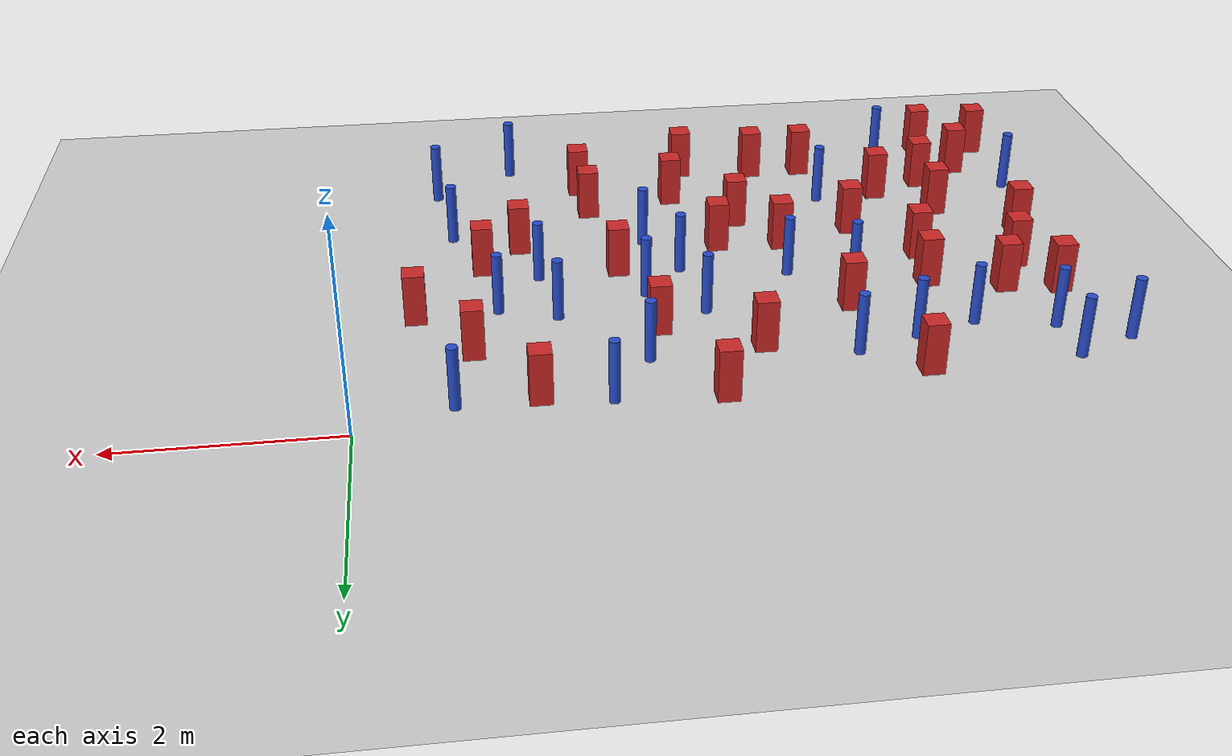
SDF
<sdf version="1.6">
 <world name="default">
  <model name="ground_plane">
   <static>1</static>
   <link name="link">
    <collision name="collision">
     <geometry><plane><normal>0 0 1</normal><size>100 100</size></plane></geometry>
     <surface><friction><ode><mu>100</mu><mu2>50</mu2></ode></friction></surface>
    </collision>
    <visual name="visual">
     <cast_shadows>0</cast_shadows>
     <geometry><plane><normal>0 0 1</normal><size>100 100</size></plane></geometry>
     <material>
      <ambient>1.0 1.0 1.0 1.0</ambient>
      <diffuse>0.8 0.8 0.8 1.0</diffuse>
      <specular>0.01 0.01 0.01 1.000000</specular>
     </material>
    </visual>
   </link>
  </model>
  <model name="square_post_obstacle2">
   <static>true</static>
   <pose>-6.33493677659 -2.16830192342 1.91545236811e-07 -7.35059704564e-06 1.12565212e-07 2.39332434364e-05</pose>
   <link name="link">
    <pose>0 0 0.25 0 -0 0</pose>
    <inertial>
     <mass>100</mass>
     <inertia>
      <ixx>0.166667</ixx>
      <ixy>0</ixy>
      <ixz>0</ixz>
      <iyy>0.166667</iyy>
      <iyz>0</iyz>
      <izz>0.166667</izz>
     </inertia>
    </inertial>
    <collision name="collision"><geometry><box><size>.2 .2 .5</size></box></geometry></collision>
    <visual name="visual">
     <geometry><box><size>.2 .2 .5</size></box></geometry>
     <material>
      <script><name>Gazebo/Red</name><uri>file://media/materials/scripts/gazebo.material</uri></script>
     </material>
    </visual>
   </link>
  </model>
  <model name="square_post_obstacle3">
   <static>true</static>
   <pose>-3.41672989915 -4.59140950743 1.91545236811e-07 -7.35059704564e-06 1.12565212e-07 2.39332434364e-05</pose>
   <link name="link">
    <pose>0 0 0.25 0 -0 0</pose>
    <inertial>
     <mass>100</mass>
     <inertia>
      <ixx>0.166667</ixx>
      <ixy>0</ixy>
      <ixz>0</ixz>
      <iyy>0.166667</iyy>
      <iyz>0</iyz>
      <izz>0.166667</izz>
     </inertia>
    </inertial>
    <collision name="collision"><geometry><box><size>.2 .2 .5</size></box></geometry></collision>
    <visual name="visual">
     <geometry><box><size>.2 .2 .5</size></box></geometry>
     <material>
      <script><name>Gazebo/Red</name><uri>file://media/materials/scripts/gazebo.material</uri></script>
     </material>
    </visual>
   </link>
  </model>
  <model name="pole_obstacle11">
   <static>true</static>
   <pose>-2.5680316428 -0.844122464464 7.38925637345e-09 -8.471706928e-08 1.24976765177e-08 -1.74513093012e-07</pose>
   <link name="link">
    <pose>0 0 0.3 0 -0 0</pose>
    <inertial>
     <mass>1</mass>
     <inertia><ixx>0.145833</ixx><ixy>0</ixy><ixz>0</ixz><iyy>0.145833</iyy><iyz>0</iyz><izz>0.125</izz></inertia>
    </inertial>
    <collision name="collision">
     <geometry><cylinder><radius>0.05</radius><length>.6</length></cylinder></geometry>
    </collision>
    <visual name="visual">
     <geometry><cylinder><radius>0.05</radius><length>.6</length></cylinder></geometry>
     <material>
      <script><name>Gazebo/Blue</name><uri>file://media/materials/scripts/gazebo.material</uri></script>
     </material>
    </visual>
   </link>
  </model>
  <model name="square_post_obstacle22">
   <static>true</static>
   <pose>-2.28275646718 -4.28150279301 1.91545236811e-07 -7.35059704564e-06 1.12565212e-07 2.39332434364e-05</pose>
   <link name="link">
    <pose>0 0 0.25 0 -0 0</pose>
    <inertial>
     <mass>100</mass>
     <inertia>
      <ixx>0.166667</ixx>
      <ixy>0</ixy>
      <ixz>0</ixz>
      <iyy>0.166667</iyy>
      <iyz>0</iyz>
      <izz>0.166667</izz>
     </inertia>
    </inertial>
    <collision name="collision"><geometry><box><size>.2 .2 .5</size></box></geometry></collision>
    <visual name="visual">
     <geometry><box><size>.2 .2 .5</size></box></geometry>
     <material>
      <script><name>Gazebo/Red</name><uri>file://media/materials/scripts/gazebo.material</uri></script>
     </material>
    </visual>
   </link>
  </model>
  <model name="square_post_obstacle23">
   <static>true</static>
   <pose>-4.16827739054 -4.4960188859 1.91545236811e-07 -7.35059704564e-06 1.12565212e-07 2.39332434364e-05</pose>
   <link name="link">
    <pose>0 0 0.25 0 -0 0</pose>
    <inertial>
     <mass>100</mass>
     <inertia>
      <ixx>0.166667</ixx>
      <ixy>0</ixy>
      <ixz>0</ixz>
      <iyy>0.166667</iyy>
      <iyz>0</iyz>
      <izz>0.166667</izz>
     </inertia>
    </inertial>
    <collision name="collision"><geometry><box><size>.2 .2 .5</size></box></geometry></collision>
    <visual name="visual">
     <geometry><box><size>.2 .2 .5</size></box></geometry>
     <material>
      <script><name>Gazebo/Red</name><uri>file://media/materials/scripts/gazebo.material</uri></script>
     </material>
    </visual>
   </link>
  </model>
  <model name="square_post_obstacle26">
   <static>true</static>
   <pose>-3.60433264316 -0.939159223739 1.91545236811e-07 -7.35059704564e-06 1.12565212e-07 2.39332434364e-05</pose>
   <link name="link">
    <pose>0 0 0.25 0 -0 0</pose>
    <inertial>
     <mass>100</mass>
     <inertia>
      <ixx>0.166667</ixx>
      <ixy>0</ixy>
      <ixz>0</ixz>
      <iyy>0.166667</iyy>
      <iyz>0</iyz>
      <izz>0.166667</izz>
     </inertia>
    </inertial>
    <collision name="collision"><geometry><box><size>.2 .2 .5</size></box></geometry></collision>
    <visual name="visual">
     <geometry><box><size>.2 .2 .5</size></box></geometry>
     <material>
      <script><name>Gazebo/Red</name><uri>file://media/materials/scripts/gazebo.material</uri></script>
     </material>
    </visual>
   </link>
  </model>
  <model name="pole_obstacle19">
   <static>true</static>
   <pose>-1.30229299585 -1.8413580244 7.38925637345e-09 -8.471706928e-08 1.24976765079e-08 -1.74513093017e-07</pose>
   <link name="link">
    <pose>0 0 0.3 0 -0 0</pose>
    <inertial>
     <mass>1</mass>
     <inertia><ixx>0.145833</ixx><ixy>0</ixy><ixz>0</ixz><iyy>0.145833</iyy><iyz>0</iyz><izz>0.125</izz></inertia>
    </inertial>
    <collision name="collision">
     <geometry><cylinder><radius>0.05</radius><length>.6</length></cylinder></geometry>
    </collision>
    <visual name="visual">
     <geometry><cylinder><radius>0.05</radius><length>.6</length></cylinder></geometry>
     <material>
      <script><name>Gazebo/Blue</name><uri>file://media/materials/scripts/gazebo.material</uri></script>
     </material>
    </visual>
   </link>
  </model>
  <model name="square_post_obstacle29">
   <static>true</static>
   <pose>-2.72443568451 -1.34159481364 1.91545236811e-07 -7.35059704564e-06 1.12565212e-07 2.39332434364e-05</pose>
   <link name="link">
    <pose>0 0 0.25 0 -0 0</pose>
    <inertial>
     <mass>100</mass>
     <inertia>
      <ixx>0.166667</ixx>
      <ixy>0</ixy>
      <ixz>0</ixz>
      <iyy>0.166667</iyy>
      <iyz>0</iyz>
      <izz>0.166667</izz>
     </inertia>
    </inertial>
    <collision name="collision"><geometry><box><size>.2 .2 .5</size></box></geometry></collision>
    <visual name="visual">
     <geometry><box><size>.2 .2 .5</size></box></geometry>
     <material>
      <script><name>Gazebo/Red</name><uri>file://media/materials/scripts/gazebo.material</uri></script>
     </material>
    </visual>
   </link>
  </model>
  <model name="square_post_obstacle30">
   <static>true</static>
   <pose>-6.37295162509 -4.31321181625 1.91545236811e-07 -7.35059704564e-06 1.12565212e-07 2.39332434364e-05</pose>
   <link name="link">
    <pose>0 0 0.25 0 -0 0</pose>
    <inertial>
     <mass>100</mass>
     <inertia>
      <ixx>0.166667</ixx>
      <ixy>0</ixy>
      <ixz>0</ixz>
      <iyy>0.166667</iyy>
      <iyz>0</iyz>
      <izz>0.166667</izz>
     </inertia>
    </inertial>
    <collision name="collision"><geometry><box><size>.2 .2 .5</size></box></geometry></collision>
    <visual name="visual">
     <geometry><box><size>.2 .2 .5</size></box></geometry>
     <material>
      <script><name>Gazebo/Red</name><uri>file://media/materials/scripts/gazebo.material</uri></script>
     </material>
    </visual>
   </link>
  </model>
  <model name="pole_obstacle21">
   <static>true</static>
   <pose>-5.61730795118 -4.70919754139 7.38925637345e-09 -8.47170692796e-08 1.24976764786e-08 -1.74513093032e-07</pose>
   <link name="link">
    <pose>0 0 0.3 0 -0 0</pose>
    <inertial>
     <mass>1</mass>
     <inertia><ixx>0.145833</ixx><ixy>0</ixy><ixz>0</ixz><iyy>0.145833</iyy><iyz>0</iyz><izz>0.125</izz></inertia>
    </inertial>
    <collision name="collision">
     <geometry><cylinder><radius>0.05</radius><length>.6</length></cylinder></geometry>
    </collision>
    <visual name="visual">
     <geometry><cylinder><radius>0.05</radius><length>.6</length></cylinder></geometry>
     <material>
      <script><name>Gazebo/Blue</name><uri>file://media/materials/scripts/gazebo.material</uri></script>
     </material>
    </visual>
   </link>
  </model>
  <model name="pole_obstacle22">
   <static>true</static>
   <pose>-5.58715791349 -1.10911913729 7.38925637345e-09 -8.471706928e-08 1.24976765134e-08 -1.74513093015e-07</pose>
   <link name="link">
    <pose>0 0 0.3 0 -0 0</pose>
    <inertial>
     <mass>1</mass>
     <inertia><ixx>0.145833</ixx><ixy>0</ixy><ixz>0</ixz><iyy>0.145833</iyy><iyz>0</iyz><izz>0.125</izz></inertia>
    </inertial>
    <collision name="collision">
     <geometry><cylinder><radius>0.05</radius><length>.6</length></cylinder></geometry>
    </collision>
    <visual name="visual">
     <geometry><cylinder><radius>0.05</radius><length>.6</length></cylinder></geometry>
     <material>
      <script><name>Gazebo/Blue</name><uri>file://media/materials/scripts/gazebo.material</uri></script>
     </material>
    </visual>
   </link>
  </model>
  <model name="pole_obstacle25">
   <static>true</static>
   <pose>-1.83728179556 -1.66361436295 7.38925637345e-09 -8.471706928e-08 1.24976765079e-08 -1.74513093017e-07</pose>
   <link name="link">
    <pose>0 0 0.3 0 -0 0</pose>
    <inertial>
     <mass>1</mass>
     <inertia><ixx>0.145833</ixx><ixy>0</ixy><ixz>0</ixz><iyy>0.145833</iyy><iyz>0</iyz><izz>0.125</izz></inertia>
    </inertial>
    <collision name="collision">
     <geometry><cylinder><radius>0.05</radius><length>.6</length></cylinder></geometry>
    </collision>
    <visual name="visual">
     <geometry><cylinder><radius>0.05</radius><length>.6</length></cylinder></geometry>
     <material>
      <script><name>Gazebo/Blue</name><uri>file://media/materials/scripts/gazebo.material</uri></script>
     </material>
    </visual>
   </link>
  </model>
  <model name="pole_obstacle27">
   <static>true</static>
   <pose>-0.937002884871 -3.31681657476 7.38925637345e-09 -8.47170692799e-08 1.2497676509e-08 -1.74513093016e-07</pose>
   <link name="link">
    <pose>0 0 0.3 0 -0 0</pose>
    <inertial>
     <mass>1</mass>
     <inertia><ixx>0.145833</ixx><ixy>0</ixy><ixz>0</ixz><iyy>0.145833</iyy><iyz>0</iyz><izz>0.125</izz></inertia>
    </inertial>
    <collision name="collision">
     <geometry><cylinder><radius>0.05</radius><length>.6</length></cylinder></geometry>
    </collision>
    <visual name="visual">
     <geometry><cylinder><radius>0.05</radius><length>.6</length></cylinder></geometry>
     <material>
      <script><name>Gazebo/Blue</name><uri>file://media/materials/scripts/gazebo.material</uri></script>
     </material>
    </visual>
   </link>
  </model>
  <model name="pole_obstacle29">
   <static>true</static>
   <pose>-4.70807690851 -2.06385257895 7.38925637345e-09 -8.47170692798e-08 1.24976764937e-08 -1.74513093023e-07</pose>
   <link name="link">
    <pose>0 0 0.3 0 -0 0</pose>
    <inertial>
     <mass>1</mass>
     <inertia><ixx>0.145833</ixx><ixy>0</ixy><ixz>0</ixz><iyy>0.145833</iyy><iyz>0</iyz><izz>0.125</izz></inertia>
    </inertial>
    <collision name="collision">
     <geometry><cylinder><radius>0.05</radius><length>.6</length></cylinder></geometry>
    </collision>
    <visual name="visual">
     <geometry><cylinder><radius>0.05</radius><length>.6</length></cylinder></geometry>
     <material>
      <script><name>Gazebo/Blue</name><uri>file://media/materials/scripts/gazebo.material</uri></script>
     </material>
    </visual>
   </link>
  </model>
  <model name="square_post_obstacle44">
   <static>true</static>
   <pose>-6.73897531042 -4.80715142833 1.91545236811e-07 -7.35059704564e-06 1.12565212e-07 2.39332434364e-05</pose>
   <link name="link">
    <pose>0 0 0.25 0 -0 0</pose>
    <inertial>
     <mass>100</mass>
     <inertia>
      <ixx>0.166667</ixx>
      <ixy>0</ixy>
      <ixz>0</ixz>
      <iyy>0.166667</iyy>
      <iyz>0</iyz>
      <izz>0.166667</izz>
     </inertia>
    </inertial>
    <collision name="collision"><geometry><box><size>.2 .2 .5</size></box></geometry></collision>
    <visual name="visual">
     <geometry><box><size>.2 .2 .5</size></box></geometry>
     <material>
      <script><name>Gazebo/Red</name><uri>file://media/materials/scripts/gazebo.material</uri></script>
     </material>
    </visual>
   </link>
  </model>
  <model name="square_post_obstacle51">
   <static>true</static>
   <pose>-5.36779938543 -3.8107366212 1.91545236811e-07 -7.35059704564e-06 1.12565212e-07 2.39332434364e-05</pose>
   <link name="link">
    <pose>0 0 0.25 0 -0 0</pose>
    <inertial>
     <mass>100</mass>
     <inertia>
      <ixx>0.166667</ixx>
      <ixy>0</ixy>
      <ixz>0</ixz>
      <iyy>0.166667</iyy>
      <iyz>0</iyz>
      <izz>0.166667</izz>
     </inertia>
    </inertial>
    <collision name="collision"><geometry><box><size>.2 .2 .5</size></box></geometry></collision>
    <visual name="visual">
     <geometry><box><size>.2 .2 .5</size></box></geometry>
     <material>
      <script><name>Gazebo/Red</name><uri>file://media/materials/scripts/gazebo.material</uri></script>
     </material>
    </visual>
   </link>
  </model>
  <model name="pole_obstacle52">
   <static>true</static>
   <pose>-0.810397324868 -4.27810373208 7.38925637345e-09 -8.471706928e-08 1.24976765086e-08 -1.74513093015e-07</pose>
   <link name="link">
    <pose>0 0 0.3 0 -0 0</pose>
    <inertial>
     <mass>1</mass>
     <inertia><ixx>0.145833</ixx><ixy>0</ixy><ixz>0</ixz><iyy>0.145833</iyy><iyz>0</iyz><izz>0.125</izz></inertia>
    </inertial>
    <collision name="collision">
     <geometry><cylinder><radius>0.05</radius><length>.6</length></cylinder></geometry>
    </collision>
    <visual name="visual">
     <geometry><cylinder><radius>0.05</radius><length>.6</length></cylinder></geometry>
     <material>
      <script><name>Gazebo/Blue</name><uri>file://media/materials/scripts/gazebo.material</uri></script>
     </material>
    </visual>
   </link>
  </model>
  <model name="square_post_obstacle62">
   <static>true</static>
   <pose>-5.89875459513 -4.02642376744 1.91545236811e-07 -7.35059704564e-06 1.12565212e-07 2.39332434364e-05</pose>
   <link name="link">
    <pose>0 0 0.25 0 -0 0</pose>
    <inertial>
     <mass>100</mass>
     <inertia>
      <ixx>0.166667</ixx>
      <ixy>0</ixy>
      <ixz>0</ixz>
      <iyy>0.166667</iyy>
      <iyz>0</iyz>
      <izz>0.166667</izz>
     </inertia>
    </inertial>
    <collision name="collision"><geometry><box><size>.2 .2 .5</size></box></geometry></collision>
    <visual name="visual">
     <geometry><box><size>.2 .2 .5</size></box></geometry>
     <material>
      <script><name>Gazebo/Red</name><uri>file://media/materials/scripts/gazebo.material</uri></script>
     </material>
    </visual>
   </link>
  </model>
  <model name="square_post_obstacle69">
   <static>true</static>
   <pose>-4.90290778773 -3.0620329613 1.91545236811e-07 -7.35059704564e-06 1.12565212e-07 2.39332434364e-05</pose>
   <link name="link">
    <pose>0 0 0.25 0 -0 0</pose>
    <inertial>
     <mass>100</mass>
     <inertia>
      <ixx>0.166667</ixx>
      <ixy>0</ixy>
      <ixz>0</ixz>
      <iyy>0.166667</iyy>
      <iyz>0</iyz>
      <izz>0.166667</izz>
     </inertia>
    </inertial>
    <collision name="collision"><geometry><box><size>.2 .2 .5</size></box></geometry></collision>
    <visual name="visual">
     <geometry><box><size>.2 .2 .5</size></box></geometry>
     <material>
      <script><name>Gazebo/Red</name><uri>file://media/materials/scripts/gazebo.material</uri></script>
     </material>
    </visual>
   </link>
  </model>
  <model name="pole_obstacle67">
   <static>true</static>
   <pose>-3.08066860473 -2.42697409345 7.38925637345e-09 -8.47170692798e-08 1.24976764939e-08 -1.74513093025e-07</pose>
   <link name="link">
    <pose>0 0 0.3 0 -0 0</pose>
    <inertial>
     <mass>1</mass>
     <inertia><ixx>0.145833</ixx><ixy>0</ixy><ixz>0</ixz><iyy>0.145833</iyy><iyz>0</iyz><izz>0.125</izz></inertia>
    </inertial>
    <collision name="collision">
     <geometry><cylinder><radius>0.05</radius><length>.6</length></cylinder></geometry>
    </collision>
    <visual name="visual">
     <geometry><cylinder><radius>0.05</radius><length>.6</length></cylinder></geometry>
     <material>
      <script><name>Gazebo/Blue</name><uri>file://media/materials/scripts/gazebo.material</uri></script>
     </material>
    </visual>
   </link>
  </model>
  <model name="square_post_obstacle72">
   <static>true</static>
   <pose>-6.5771044003 -1.628582767 1.91545236811e-07 -7.35059704564e-06 1.12565212e-07 2.39332434364e-05</pose>
   <link name="link">
    <pose>0 0 0.25 0 -0 0</pose>
    <inertial>
     <mass>100</mass>
     <inertia>
      <ixx>0.166667</ixx>
      <ixy>0</ixy>
      <ixz>0</ixz>
      <iyy>0.166667</iyy>
      <iyz>0</iyz>
      <izz>0.166667</izz>
     </inertia>
    </inertial>
    <collision name="collision"><geometry><box><size>.2 .2 .5</size></box></geometry></collision>
    <visual name="visual">
     <geometry><box><size>.2 .2 .5</size></box></geometry>
     <material>
      <script><name>Gazebo/Red</name><uri>file://media/materials/scripts/gazebo.material</uri></script>
     </material>
    </visual>
   </link>
  </model>
  <model name="pole_obstacle77">
   <static>true</static>
   <pose>-1.59422433769 -4.78620893817 7.38925637345e-09 -8.47170692799e-08 1.24976765033e-08 -1.74513093018e-07</pose>
   <link name="link">
    <pose>0 0 0.3 0 -0 0</pose>
    <inertial>
     <mass>1</mass>
     <inertia><ixx>0.145833</ixx><ixy>0</ixy><ixz>0</ixz><iyy>0.145833</iyy><iyz>0</iyz><izz>0.125</izz></inertia>
    </inertial>
    <collision name="collision">
     <geometry><cylinder><radius>0.05</radius><length>.6</length></cylinder></geometry>
    </collision>
    <visual name="visual">
     <geometry><cylinder><radius>0.05</radius><length>.6</length></cylinder></geometry>
     <material>
      <script><name>Gazebo/Blue</name><uri>file://media/materials/scripts/gazebo.material</uri></script>
     </material>
    </visual>
   </link>
  </model>
  <model name="pole_obstacle79">
   <static>true</static>
   <pose>-6.79373213247 -3.83398266983 7.38925637345e-09 -8.47170692798e-08 1.24976764937e-08 -1.74513093023e-07</pose>
   <link name="link">
    <pose>0 0 0.3 0 -0 0</pose>
    <inertial>
     <mass>1</mass>
     <inertia><ixx>0.145833</ixx><ixy>0</ixy><ixz>0</ixz><iyy>0.145833</iyy><iyz>0</iyz><izz>0.125</izz></inertia>
    </inertial>
    <collision name="collision">
     <geometry><cylinder><radius>0.05</radius><length>.6</length></cylinder></geometry>
    </collision>
    <visual name="visual">
     <geometry><cylinder><radius>0.05</radius><length>.6</length></cylinder></geometry>
     <material>
      <script><name>Gazebo/Blue</name><uri>file://media/materials/scripts/gazebo.material</uri></script>
     </material>
    </visual>
   </link>
  </model>
  <model name="pole_obstacle89">
   <static>true</static>
   <pose>-6.3417037939 -0.432548549356 7.38925637345e-09 -8.47170692798e-08 1.24976765003e-08 -1.7451309302e-07</pose>
   <link name="link">
    <pose>0 0 0.3 0 -0 0</pose>
    <inertial>
     <mass>1</mass>
     <inertia><ixx>0.145833</ixx><ixy>0</ixy><ixz>0</ixz><iyy>0.145833</iyy><iyz>0</iyz><izz>0.125</izz></inertia>
    </inertial>
    <collision name="collision">
     <geometry><cylinder><radius>0.05</radius><length>.6</length></cylinder></geometry>
    </collision>
    <visual name="visual">
     <geometry><cylinder><radius>0.05</radius><length>.6</length></cylinder></geometry>
     <material>
      <script><name>Gazebo/Blue</name><uri>file://media/materials/scripts/gazebo.material</uri></script>
     </material>
    </visual>
   </link>
  </model>
  <model name="square_post_obstacle86">
   <static>true</static>
   <pose>-3.78844333719 -3.3619035592 1.91545236811e-07 -7.35059704564e-06 1.12565212e-07 2.39332434364e-05</pose>
   <link name="link">
    <pose>0 0 0.25 0 -0 0</pose>
    <inertial>
     <mass>100</mass>
     <inertia>
      <ixx>0.166667</ixx>
      <ixy>0</ixy>
      <ixz>0</ixz>
      <iyy>0.166667</iyy>
      <iyz>0</iyz>
      <izz>0.166667</izz>
     </inertia>
    </inertial>
    <collision name="collision"><geometry><box><size>.2 .2 .5</size></box></geometry></collision>
    <visual name="visual">
     <geometry><box><size>.2 .2 .5</size></box></geometry>
     <material>
      <script><name>Gazebo/Red</name><uri>file://media/materials/scripts/gazebo.material</uri></script>
     </material>
    </visual>
   </link>
  </model>
  <model name="pole_obstacle97">
   <static>true</static>
   <pose>-6.90235554496 -0.680822175995 7.38925637345e-09 -8.47170692799e-08 1.24976765038e-08 -1.74513093018e-07</pose>
   <link name="link">
    <pose>0 0 0.3 0 -0 0</pose>
    <inertial>
     <mass>1</mass>
     <inertia><ixx>0.145833</ixx><ixy>0</ixy><ixz>0</ixz><iyy>0.145833</iyy><iyz>0</iyz><izz>0.125</izz></inertia>
    </inertial>
    <collision name="collision">
     <geometry><cylinder><radius>0.05</radius><length>.6</length></cylinder></geometry>
    </collision>
    <visual name="visual">
     <geometry><cylinder><radius>0.05</radius><length>.6</length></cylinder></geometry>
     <material>
      <script><name>Gazebo/Blue</name><uri>file://media/materials/scripts/gazebo.material</uri></script>
     </material>
    </visual>
   </link>
  </model>
  <model name="square_post_obstacle92">
   <static>true</static>
   <pose>-1.19988915969 -2.6409424495 1.91545236811e-07 -7.35059704564e-06 1.12565212e-07 2.39332434364e-05</pose>
   <link name="link">
    <pose>0 0 0.25 0 -0 0</pose>
    <inertial>
     <mass>100</mass>
     <inertia>
      <ixx>0.166667</ixx>
      <ixy>0</ixy>
      <ixz>0</ixz>
      <iyy>0.166667</iyy>
      <iyz>0</iyz>
      <izz>0.166667</izz>
     </inertia>
    </inertial>
    <collision name="collision"><geometry><box><size>.2 .2 .5</size></box></geometry></collision>
    <visual name="visual">
     <geometry><box><size>.2 .2 .5</size></box></geometry>
     <material>
      <script><name>Gazebo/Red</name><uri>file://media/materials/scripts/gazebo.material</uri></script>
     </material>
    </visual>
   </link>
  </model>
  <model name="pole_obstacle109">
   <static>true</static>
   <pose>-4.74854139165 -3.76409709432 7.38925637345e-09 -8.47170692798e-08 1.24976764937e-08 -1.74513093023e-07</pose>
   <link name="link">
    <pose>0 0 0.3 0 -0 0</pose>
    <inertial>
     <mass>1</mass>
     <inertia><ixx>0.145833</ixx><ixy>0</ixy><ixz>0</ixz><iyy>0.145833</iyy><iyz>0</iyz><izz>0.125</izz></inertia>
    </inertial>
    <collision name="collision">
     <geometry><cylinder><radius>0.05</radius><length>.6</length></cylinder></geometry>
    </collision>
    <visual name="visual">
     <geometry><cylinder><radius>0.05</radius><length>.6</length></cylinder></geometry>
     <material>
      <script><name>Gazebo/Blue</name><uri>file://media/materials/scripts/gazebo.material</uri></script>
     </material>
    </visual>
   </link>
  </model>
  <model name="square_post_obstacle98">
   <static>true</static>
   <pose>-4.14745020982 -2.818938567 1.91545236811e-07 -7.35059704564e-06 1.12565212e-07 2.39332434364e-05</pose>
   <link name="link">
    <pose>0 0 0.25 0 -0 0</pose>
    <inertial>
     <mass>100</mass>
     <inertia>
      <ixx>0.166667</ixx>
      <ixy>0</ixy>
      <ixz>0</ixz>
      <iyy>0.166667</iyy>
      <iyz>0</iyz>
      <izz>0.166667</izz>
     </inertia>
    </inertial>
    <collision name="collision"><geometry><box><size>.2 .2 .5</size></box></geometry></collision>
    <visual name="visual">
     <geometry><box><size>.2 .2 .5</size></box></geometry>
     <material>
      <script><name>Gazebo/Red</name><uri>file://media/materials/scripts/gazebo.material</uri></script>
     </material>
    </visual>
   </link>
  </model>
  <model name="pole_obstacle117">
   <static>true</static>
   <pose>-2.69078042785 -1.99279269052 7.38925637345e-09 -8.471706928e-08 1.249767651e-08 -1.74513093015e-07</pose>
   <link name="link">
    <pose>0 0 0.3 0 -0 0</pose>
    <inertial>
     <mass>1</mass>
     <inertia><ixx>0.145833</ixx><ixy>0</ixy><ixz>0</ixz><iyy>0.145833</iyy><iyz>0</iyz><izz>0.125</izz></inertia>
    </inertial>
    <collision name="collision">
     <geometry><cylinder><radius>0.05</radius><length>.6</length></cylinder></geometry>
    </collision>
    <visual name="visual">
     <geometry><cylinder><radius>0.05</radius><length>.6</length></cylinder></geometry>
     <material>
      <script><name>Gazebo/Blue</name><uri>file://media/materials/scripts/gazebo.material</uri></script>
     </material>
    </visual>
   </link>
  </model>
  <model name="square_post_obstacle106">
   <static>true</static>
   <pose>-1.57714338747 -3.03942916583 1.91545236811e-07 -7.35059704564e-06 1.12565212e-07 2.39332434364e-05</pose>
   <link name="link">
    <pose>0 0 0.25 0 -0 0</pose>
    <inertial>
     <mass>100</mass>
     <inertia>
      <ixx>0.166667</ixx>
      <ixy>0</ixy>
      <ixz>0</ixz>
      <iyy>0.166667</iyy>
      <iyz>0</iyz>
      <izz>0.166667</izz>
     </inertia>
    </inertial>
    <collision name="collision"><geometry><box><size>.2 .2 .5</size></box></geometry></collision>
    <visual name="visual">
     <geometry><box><size>.2 .2 .5</size></box></geometry>
     <material>
      <script><name>Gazebo/Red</name><uri>file://media/materials/scripts/gazebo.material</uri></script>
     </material>
    </visual>
   </link>
  </model>
  <model name="pole_obstacle125">
   <static>true</static>
   <pose>-0.851745104304 -0.302418208648 7.38925637345e-09 -8.471706928e-08 1.24976765108e-08 -1.74513093015e-07</pose>
   <link name="link">
    <pose>0 0 0.3 0 -0 0</pose>
    <inertial>
     <mass>1</mass>
     <inertia><ixx>0.145833</ixx><ixy>0</ixy><ixz>0</ixz><iyy>0.145833</iyy><iyz>0</iyz><izz>0.125</izz></inertia>
    </inertial>
    <collision name="collision">
     <geometry><cylinder><radius>0.05</radius><length>.6</length></cylinder></geometry>
    </collision>
    <visual name="visual">
     <geometry><cylinder><radius>0.05</radius><length>.6</length></cylinder></geometry>
     <material>
      <script><name>Gazebo/Blue</name><uri>file://media/materials/scripts/gazebo.material</uri></script>
     </material>
    </visual>
   </link>
  </model>
  <model name="pole_obstacle128">
   <static>true</static>
   <pose>-4.09712016239 -2.23001538375 7.38925637345e-09 -8.47170692798e-08 1.24976764937e-08 -1.74513093023e-07</pose>
   <link name="link">
    <pose>0 0 0.3 0 -0 0</pose>
    <inertial>
     <mass>1</mass>
     <inertia><ixx>0.145833</ixx><ixy>0</ixy><ixz>0</ixz><iyy>0.145833</iyy><iyz>0</iyz><izz>0.125</izz></inertia>
    </inertial>
    <collision name="collision">
     <geometry><cylinder><radius>0.05</radius><length>.6</length></cylinder></geometry>
    </collision>
    <visual name="visual">
     <geometry><cylinder><radius>0.05</radius><length>.6</length></cylinder></geometry>
     <material>
      <script><name>Gazebo/Blue</name><uri>file://media/materials/scripts/gazebo.material</uri></script>
     </material>
    </visual>
   </link>
  </model>
  <model name="square_post_obstacle117">
   <static>true</static>
   <pose>-1.56939161689 -0.344784112629 1.91545236811e-07 -7.35059704564e-06 1.12565212e-07 2.39332434364e-05</pose>
   <link name="link">
    <pose>0 0 0.25 0 -0 0</pose>
    <inertial>
     <mass>100</mass>
     <inertia>
      <ixx>0.166667</ixx>
      <ixy>0</ixy>
      <ixz>0</ixz>
      <iyy>0.166667</iyy>
      <iyz>0</iyz>
      <izz>0.166667</izz>
     </inertia>
    </inertial>
    <collision name="collision"><geometry><box><size>.2 .2 .5</size></box></geometry></collision>
    <visual name="visual">
     <geometry><box><size>.2 .2 .5</size></box></geometry>
     <material>
      <script><name>Gazebo/Red</name><uri>file://media/materials/scripts/gazebo.material</uri></script>
     </material>
    </visual>
   </link>
  </model>
  <model name="square_post_obstacle118">
   <static>true</static>
   <pose>-2.33280439041 -3.74051379975 1.91545236811e-07 -7.35059704564e-06 1.12565212e-07 2.39332434364e-05</pose>
   <link name="link">
    <pose>0 0 0.25 0 -0 0</pose>
    <inertial>
     <mass>100</mass>
     <inertia>
      <ixx>0.166667</ixx>
      <ixy>0</ixy>
      <ixz>0</ixz>
      <iyy>0.166667</iyy>
      <iyz>0</iyz>
      <izz>0.166667</izz>
     </inertia>
    </inertial>
    <collision name="collision"><geometry><box><size>.2 .2 .5</size></box></geometry></collision>
    <visual name="visual">
     <geometry><box><size>.2 .2 .5</size></box></geometry>
     <material>
      <script><name>Gazebo/Red</name><uri>file://media/materials/scripts/gazebo.material</uri></script>
     </material>
    </visual>
   </link>
  </model>
  <model name="pole_obstacle137">
   <static>true</static>
   <pose>-4.41678609996 -0.729449432249 7.38925637345e-09 -8.47170692799e-08 1.24976765038e-08 -1.74513093018e-07</pose>
   <link name="link">
    <pose>0 0 0.3 0 -0 0</pose>
    <inertial>
     <mass>1</mass>
     <inertia><ixx>0.145833</ixx><ixy>0</ixy><ixz>0</ixz><iyy>0.145833</iyy><iyz>0</iyz><izz>0.125</izz></inertia>
    </inertial>
    <collision name="collision">
     <geometry><cylinder><radius>0.05</radius><length>.6</length></cylinder></geometry>
    </collision>
    <visual name="visual">
     <geometry><cylinder><radius>0.05</radius><length>.6</length></cylinder></geometry>
     <material>
      <script><name>Gazebo/Blue</name><uri>file://media/materials/scripts/gazebo.material</uri></script>
     </material>
    </visual>
   </link>
  </model>
  <model name="square_post_obstacle125">
   <static>true</static>
   <pose>-5.8838132041 -3.36729268879 1.91545236811e-07 -7.35059704564e-06 1.12565212e-07 2.39332434364e-05</pose>
   <link name="link">
    <pose>0 0 0.25 0 -0 0</pose>
    <inertial>
     <mass>100</mass>
     <inertia>
      <ixx>0.166667</ixx>
      <ixy>0</ixy>
      <ixz>0</ixz>
      <iyy>0.166667</iyy>
      <iyz>0</iyz>
      <izz>0.166667</izz>
     </inertia>
    </inertial>
    <collision name="collision"><geometry><box><size>.2 .2 .5</size></box></geometry></collision>
    <visual name="visual">
     <geometry><box><size>.2 .2 .5</size></box></geometry>
     <material>
      <script><name>Gazebo/Red</name><uri>file://media/materials/scripts/gazebo.material</uri></script>
     </material>
    </visual>
   </link>
  </model>
  <model name="square_post_obstacle134">
   <static>true</static>
   <pose>-6.12835058547 -4.86557405389 1.91545236811e-07 -7.35059704564e-06 1.12565212e-07 2.39332434364e-05</pose>
   <link name="link">
    <pose>0 0 0.25 0 -0 0</pose>
    <inertial>
     <mass>100</mass>
     <inertia>
      <ixx>0.166667</ixx>
      <ixy>0</ixy>
      <ixz>0</ixz>
      <iyy>0.166667</iyy>
      <iyz>0</iyz>
      <izz>0.166667</izz>
     </inertia>
    </inertial>
    <collision name="collision"><geometry><box><size>.2 .2 .5</size></box></geometry></collision>
    <visual name="visual">
     <geometry><box><size>.2 .2 .5</size></box></geometry>
     <material>
      <script><name>Gazebo/Red</name><uri>file://media/materials/scripts/gazebo.material</uri></script>
     </material>
    </visual>
   </link>
  </model>
  <model name="square_post_obstacle135">
   <static>true</static>
   <pose>-5.43922166385 -2.45360155832 1.91545236811e-07 -7.35059704564e-06 1.12565212e-07 2.39332434364e-05</pose>
   <link name="link">
    <pose>0 0 0.25 0 -0 0</pose>
    <inertial>
     <mass>100</mass>
     <inertia>
      <ixx>0.166667</ixx>
      <ixy>0</ixy>
      <ixz>0</ixz>
      <iyy>0.166667</iyy>
      <iyz>0</iyz>
      <izz>0.166667</izz>
     </inertia>
    </inertial>
    <collision name="collision"><geometry><box><size>.2 .2 .5</size></box></geometry></collision>
    <visual name="visual">
     <geometry><box><size>.2 .2 .5</size></box></geometry>
     <material>
      <script><name>Gazebo/Red</name><uri>file://media/materials/scripts/gazebo.material</uri></script>
     </material>
    </visual>
   </link>
  </model>
  <model name="pole_obstacle146">
   <static>true</static>
   <pose>-6.30716091886 -0.955324227814 7.38925637345e-09 -8.47170692799e-08 1.24976765054e-08 -1.74513093018e-07</pose>
   <link name="link">
    <pose>0 0 0.3 0 -0 0</pose>
    <inertial>
     <mass>1</mass>
     <inertia><ixx>0.145833</ixx><ixy>0</ixy><ixz>0</ixz><iyy>0.145833</iyy><iyz>0</iyz><izz>0.125</izz></inertia>
    </inertial>
    <collision name="collision">
     <geometry><cylinder><radius>0.05</radius><length>.6</length></cylinder></geometry>
    </collision>
    <visual name="visual">
     <geometry><cylinder><radius>0.05</radius><length>.6</length></cylinder></geometry>
     <material>
      <script><name>Gazebo/Blue</name><uri>file://media/materials/scripts/gazebo.material</uri></script>
     </material>
    </visual>
   </link>
  </model>
  <model name="square_post_obstacle146">
   <static>true</static>
   <pose>-4.95543179515 -0.384234784521 1.91545236811e-07 -7.35059704564e-06 1.12565212e-07 2.39332434364e-05</pose>
   <link name="link">
    <pose>0 0 0.25 0 -0 0</pose>
    <inertial>
     <mass>100</mass>
     <inertia>
      <ixx>0.166667</ixx>
      <ixy>0</ixy>
      <ixz>0</ixz>
      <iyy>0.166667</iyy>
      <iyz>0</iyz>
      <izz>0.166667</izz>
     </inertia>
    </inertial>
    <collision name="collision"><geometry><box><size>.2 .2 .5</size></box></geometry></collision>
    <visual name="visual">
     <geometry><box><size>.2 .2 .5</size></box></geometry>
     <material>
      <script><name>Gazebo/Red</name><uri>file://media/materials/scripts/gazebo.material</uri></script>
     </material>
    </visual>
   </link>
  </model>
  <model name="pole_obstacle156">
   <static>true</static>
   <pose>-2.18107358514 -0.236827608881 7.38925637345e-09 -8.47170692793e-08 1.24976764426e-08 -1.74513093041e-07</pose>
   <link name="link">
    <pose>0 0 0.3 0 -0 0</pose>
    <inertial>
     <mass>1</mass>
     <inertia><ixx>0.145833</ixx><ixy>0</ixy><ixz>0</ixz><iyy>0.145833</iyy><iyz>0</iyz><izz>0.125</izz></inertia>
    </inertial>
    <collision name="collision">
     <geometry><cylinder><radius>0.05</radius><length>.6</length></cylinder></geometry>
    </collision>
    <visual name="visual">
     <geometry><cylinder><radius>0.05</radius><length>.6</length></cylinder></geometry>
     <material>
      <script><name>Gazebo/Blue</name><uri>file://media/materials/scripts/gazebo.material</uri></script>
     </material>
    </visual>
   </link>
  </model>
  <model name="square_post_obstacle150">
   <static>true</static>
   <pose>-5.37522499805 -1.89919621867 1.91545236811e-07 -7.35059704564e-06 1.12565212e-07 2.39332434364e-05</pose>
   <link name="link">
    <pose>0 0 0.25 0 -0 0</pose>
    <inertial>
     <mass>100</mass>
     <inertia>
      <ixx>0.166667</ixx>
      <ixy>0</ixy>
      <ixz>0</ixz>
      <iyy>0.166667</iyy>
      <iyz>0</iyz>
      <izz>0.166667</izz>
     </inertia>
    </inertial>
    <collision name="collision"><geometry><box><size>.2 .2 .5</size></box></geometry></collision>
    <visual name="visual">
     <geometry><box><size>.2 .2 .5</size></box></geometry>
     <material>
      <script><name>Gazebo/Red</name><uri>file://media/materials/scripts/gazebo.material</uri></script>
     </material>
    </visual>
   </link>
  </model>
  <model name="pole_obstacle172">
   <static>true</static>
   <pose>-2.80123229649 -3.02058118729 7.38925637345e-09 -8.47170692798e-08 1.24976764939e-08 -1.74513093025e-07</pose>
   <link name="link">
    <pose>0 0 0.3 0 -0 0</pose>
    <inertial>
     <mass>1</mass>
     <inertia><ixx>0.145833</ixx><ixy>0</ixy><ixz>0</ixz><iyy>0.145833</iyy><iyz>0</iyz><izz>0.125</izz></inertia>
    </inertial>
    <collision name="collision">
     <geometry><cylinder><radius>0.05</radius><length>.6</length></cylinder></geometry>
    </collision>
    <visual name="visual">
     <geometry><cylinder><radius>0.05</radius><length>.6</length></cylinder></geometry>
     <material>
      <script><name>Gazebo/Blue</name><uri>file://media/materials/scripts/gazebo.material</uri></script>
     </material>
    </visual>
   </link>
  </model>
  <model name="pole_obstacle173">
   <static>true</static>
   <pose>-3.20109982567 -1.61003179502 7.38925637345e-09 -8.47170692796e-08 1.24976764713e-08 -1.74513093037e-07</pose>
   <link name="link">
    <pose>0 0 0.3 0 -0 0</pose>
    <inertial>
     <mass>1</mass>
     <inertia><ixx>0.145833</ixx><ixy>0</ixy><ixz>0</ixz><iyy>0.145833</iyy><iyz>0</iyz><izz>0.125</izz></inertia>
    </inertial>
    <collision name="collision">
     <geometry><cylinder><radius>0.05</radius><length>.6</length></cylinder></geometry>
    </collision>
    <visual name="visual">
     <geometry><cylinder><radius>0.05</radius><length>.6</length></cylinder></geometry>
     <material>
      <script><name>Gazebo/Blue</name><uri>file://media/materials/scripts/gazebo.material</uri></script>
     </material>
    </visual>
   </link>
  </model>
  <model name="square_post_obstacle165">
   <static>true</static>
   <pose>-4.54601556518 -1.54932787752 1.91545236811e-07 -7.35059704564e-06 1.12565212e-07 2.39332434364e-05</pose>
   <link name="link">
    <pose>0 0 0.25 0 -0 0</pose>
    <inertial>
     <mass>100</mass>
     <inertia>
      <ixx>0.166667</ixx>
      <ixy>0</ixy>
      <ixz>0</ixz>
      <iyy>0.166667</iyy>
      <iyz>0</iyz>
      <izz>0.166667</izz>
     </inertia>
    </inertial>
    <collision name="collision"><geometry><box><size>.2 .2 .5</size></box></geometry></collision>
    <visual name="visual">
     <geometry><box><size>.2 .2 .5</size></box></geometry>
     <material>
      <script><name>Gazebo/Red</name><uri>file://media/materials/scripts/gazebo.material</uri></script>
     </material>
    </visual>
   </link>
  </model>
  <model name="square_post_obstacle180">
   <static>true</static>
   <pose>-3.20938494709 -3.94877566204 1.91545236811e-07 -7.35059704564e-06 1.12565212e-07 2.39332434364e-05</pose>
   <link name="link">
    <pose>0 0 0.25 0 -0 0</pose>
    <inertial>
     <mass>100</mass>
     <inertia>
      <ixx>0.166667</ixx>
      <ixy>0</ixy>
      <ixz>0</ixz>
      <iyy>0.166667</iyy>
      <iyz>0</iyz>
      <izz>0.166667</izz>
     </inertia>
    </inertial>
    <collision name="collision"><geometry><box><size>.2 .2 .5</size></box></geometry></collision>
    <visual name="visual">
     <geometry><box><size>.2 .2 .5</size></box></geometry>
     <material>
      <script><name>Gazebo/Red</name><uri>file://media/materials/scripts/gazebo.material</uri></script>
     </material>
    </visual>
   </link>
  </model>
  <model name="square_post_obstacle183">
   <static>true</static>
   <pose>-2.48576623617 -2.47323262318 1.91545236811e-07 -7.35059704564e-06 1.12565212e-07 2.39332434364e-05</pose>
   <link name="link">
    <pose>0 0 0.25 0 -0 0</pose>
    <inertial>
     <mass>100</mass>
     <inertia>
      <ixx>0.166667</ixx>
      <ixy>0</ixy>
      <ixz>0</ixz>
      <iyy>0.166667</iyy>
      <iyz>0</iyz>
      <izz>0.166667</izz>
     </inertia>
    </inertial>
    <collision name="collision"><geometry><box><size>.2 .2 .5</size></box></geometry></collision>
    <visual name="visual">
     <geometry><box><size>.2 .2 .5</size></box></geometry>
     <material>
      <script><name>Gazebo/Red</name><uri>file://media/materials/scripts/gazebo.material</uri></script>
     </material>
    </visual>
   </link>
  </model>
  <model name="square_post_obstacle186">
   <static>true</static>
   <pose>-4.70079225087 -4.49012872551 1.91545236811e-07 -7.35059704564e-06 1.12565212e-07 2.39332434364e-05</pose>
   <link name="link">
    <pose>0 0 0.25 0 -0 0</pose>
    <inertial>
     <mass>100</mass>
     <inertia>
      <ixx>0.166667</ixx>
      <ixy>0</ixy>
      <ixz>0</ixz>
      <iyy>0.166667</iyy>
      <iyz>0</iyz>
      <izz>0.166667</izz>
     </inertia>
    </inertial>
    <collision name="collision"><geometry><box><size>.2 .2 .5</size></box></geometry></collision>
    <visual name="visual">
     <geometry><box><size>.2 .2 .5</size></box></geometry>
     <material>
      <script><name>Gazebo/Red</name><uri>file://media/materials/scripts/gazebo.material</uri></script>
     </material>
    </visual>
   </link>
  </model>
  <model name="pole_obstacle195">
   <static>true</static>
   <pose>-1.72055302364 -2.42091893335 7.38925637345e-09 -8.47170692799e-08 1.24976765053e-08 -1.74513093017e-07</pose>
   <link name="link">
    <pose>0 0 0.3 0 -0 0</pose>
    <inertial>
     <mass>1</mass>
     <inertia><ixx>0.145833</ixx><ixy>0</ixy><ixz>0</ixz><iyy>0.145833</iyy><iyz>0</iyz><izz>0.125</izz></inertia>
    </inertial>
    <collision name="collision">
     <geometry><cylinder><radius>0.05</radius><length>.6</length></cylinder></geometry>
    </collision>
    <visual name="visual">
     <geometry><cylinder><radius>0.05</radius><length>.6</length></cylinder></geometry>
     <material>
      <script><name>Gazebo/Blue</name><uri>file://media/materials/scripts/gazebo.material</uri></script>
     </material>
    </visual>
   </link>
  </model>
  <model name="square_post_obstacle204">
   <static>true</static>
   <pose>-6.07154910539 -1.70685821089 1.91545236811e-07 -7.35059704564e-06 1.12565212e-07 2.39332434364e-05</pose>
   <link name="link">
    <pose>0 0 0.25 0 -0 0</pose>
    <inertial>
     <mass>100</mass>
     <inertia>
      <ixx>0.166667</ixx>
      <ixy>0</ixy>
      <ixz>0</ixz>
      <iyy>0.166667</iyy>
      <iyz>0</iyz>
      <izz>0.166667</izz>
     </inertia>
    </inertial>
    <collision name="collision"><geometry><box><size>.2 .2 .5</size></box></geometry></collision>
    <visual name="visual">
     <geometry><box><size>.2 .2 .5</size></box></geometry>
     <material>
      <script><name>Gazebo/Red</name><uri>file://media/materials/scripts/gazebo.material</uri></script>
     </material>
    </visual>
   </link>
  </model>
  <model name="pole_obstacle201">
   <static>true</static>
   <pose>-5.00126187824 -0.929716074037 7.38925637345e-09 -8.47170692799e-08 1.24976765038e-08 -1.74513093018e-07</pose>
   <link name="link">
    <pose>0 0 0.3 0 -0 0</pose>
    <inertial>
     <mass>1</mass>
     <inertia><ixx>0.145833</ixx><ixy>0</ixy><ixz>0</ixz><iyy>0.145833</iyy><iyz>0</iyz><izz>0.125</izz></inertia>
    </inertial>
    <collision name="collision">
     <geometry><cylinder><radius>0.05</radius><length>.6</length></cylinder></geometry>
    </collision>
    <visual name="visual">
     <geometry><cylinder><radius>0.05</radius><length>.6</length></cylinder></geometry>
     <material>
      <script><name>Gazebo/Blue</name><uri>file://media/materials/scripts/gazebo.material</uri></script>
     </material>
    </visual>
   </link>
  </model>
  <model name="square_post_obstacle205">
   <static>true</static>
   <pose>-3.51752379855 -2.86139343059 1.91545236811e-07 -7.35059704564e-06 1.12565212e-07 2.39332434364e-05</pose>
   <link name="link">
    <pose>0 0 0.25 0 -0 0</pose>
    <inertial>
     <mass>100</mass>
     <inertia>
      <ixx>0.166667</ixx>
      <ixy>0</ixy>
      <ixz>0</ixz>
      <iyy>0.166667</iyy>
      <iyz>0</iyz>
      <izz>0.166667</izz>
     </inertia>
    </inertial>
    <collision name="collision"><geometry><box><size>.2 .2 .5</size></box></geometry></collision>
    <visual name="visual">
     <geometry><box><size>.2 .2 .5</size></box></geometry>
     <material>
      <script><name>Gazebo/Red</name><uri>file://media/materials/scripts/gazebo.material</uri></script>
     </material>
    </visual>
   </link>
  </model>
  <model name="square_post_obstacle206">
   <static>true</static>
   <pose>-1.04168112958 -1.12503813911 1.91545236811e-07 -7.35059704564e-06 1.12565212e-07 2.39332434364e-05</pose>
   <link name="link">
    <pose>0 0 0.25 0 -0 0</pose>
    <inertial>
     <mass>100</mass>
     <inertia>
      <ixx>0.166667</ixx>
      <ixy>0</ixy>
      <ixz>0</ixz>
      <iyy>0.166667</iyy>
      <iyz>0</iyz>
      <izz>0.166667</izz>
     </inertia>
    </inertial>
    <collision name="collision"><geometry><box><size>.2 .2 .5</size></box></geometry></collision>
    <visual name="visual">
     <geometry><box><size>.2 .2 .5</size></box></geometry>
     <material>
      <script><name>Gazebo/Red</name><uri>file://media/materials/scripts/gazebo.material</uri></script>
     </material>
    </visual>
   </link>
  </model>
  <model name="square_post_obstacle209">
   <static>true</static>
   <pose>-3.13209447459 -0.197577805378 1.91545236811e-07 -7.35059704564e-06 1.12565212e-07 2.39332434364e-05</pose>
   <link name="link">
    <pose>0 0 0.25 0 -0 0</pose>
    <inertial>
     <mass>100</mass>
     <inertia>
      <ixx>0.166667</ixx>
      <ixy>0</ixy>
      <ixz>0</ixz>
      <iyy>0.166667</iyy>
      <iyz>0</iyz>
      <izz>0.166667</izz>
     </inertia>
    </inertial>
    <collision name="collision"><geometry><box><size>.2 .2 .5</size></box></geometry></collision>
    <visual name="visual">
     <geometry><box><size>.2 .2 .5</size></box></geometry>
     <material>
      <script><name>Gazebo/Red</name><uri>file://media/materials/scripts/gazebo.material</uri></script>
     </material>
    </visual>
   </link>
  </model>
  <model name="square_post_obstacle218">
   <static>true</static>
   <pose>-6.5826900352 -2.82776001192 1.91545236811e-07 -7.35059704564e-06 1.12565212e-07 2.39332434364e-05</pose>
   <link name="link">
    <pose>0 0 0.25 0 -0 0</pose>
    <inertial>
     <mass>100</mass>
     <inertia>
      <ixx>0.166667</ixx>
      <ixy>0</ixy>
      <ixz>0</ixz>
      <iyy>0.166667</iyy>
      <iyz>0</iyz>
      <izz>0.166667</izz>
     </inertia>
    </inertial>
    <collision name="collision"><geometry><box><size>.2 .2 .5</size></box></geometry></collision>
    <visual name="visual">
     <geometry><box><size>.2 .2 .5</size></box></geometry>
     <material>
      <script><name>Gazebo/Red</name><uri>file://media/materials/scripts/gazebo.material</uri></script>
     </material>
    </visual>
   </link>
  </model>
  <model name="square_post_obstacle221">
   <static>true</static>
   <pose>-0.544570035195 -1.79090001192 1.91545236811e-07 -7.35059704564e-06 1.12565212e-07 2.39332434364e-05</pose>
   <link name="link">
    <pose>0 0 0.25 0 -0 0</pose>
    <inertial>
     <mass>100</mass>
     <inertia>
      <ixx>0.166667</ixx>
      <ixy>0</ixy>
      <ixz>0</ixz>
      <iyy>0.166667</iyy>
      <iyz>0</iyz>
      <izz>0.166667</izz>
     </inertia>
    </inertial>
    <collision name="collision"><geometry><box><size>.2 .2 .5</size></box></geometry></collision>
    <visual name="visual">
     <geometry><box><size>.2 .2 .5</size></box></geometry>
     <material>
      <script><name>Gazebo/Red</name><uri>file://media/materials/scripts/gazebo.material</uri></script>
     </material>
    </visual>
   </link>
  </model>
 </world>
</sdf>
